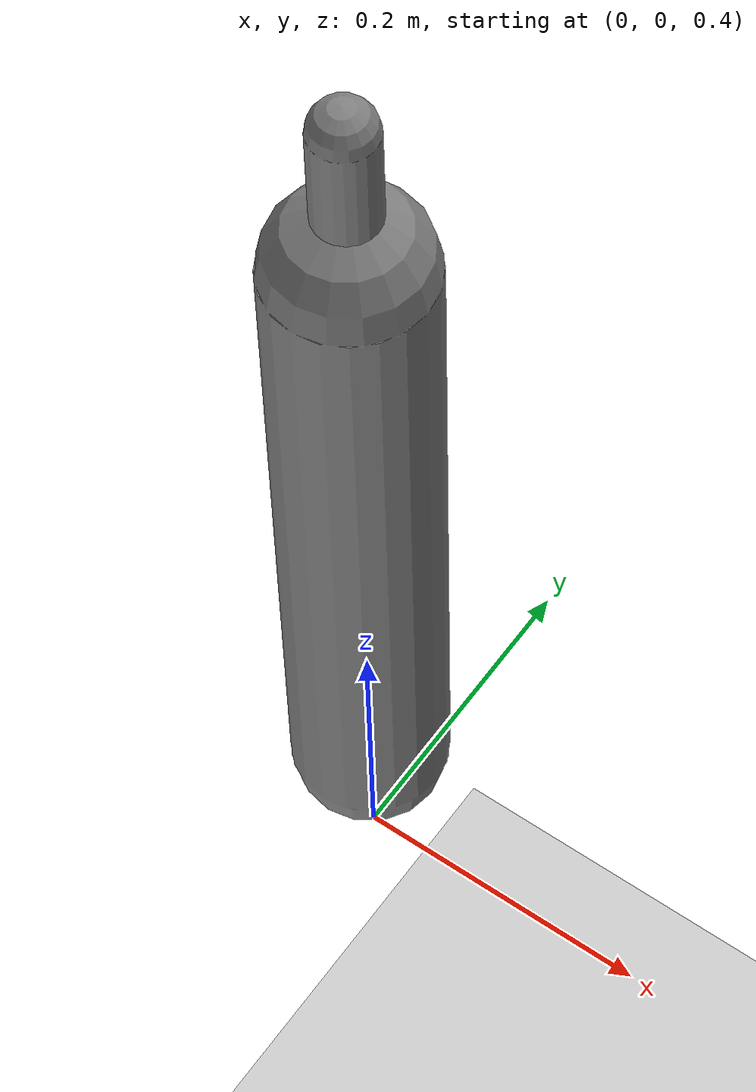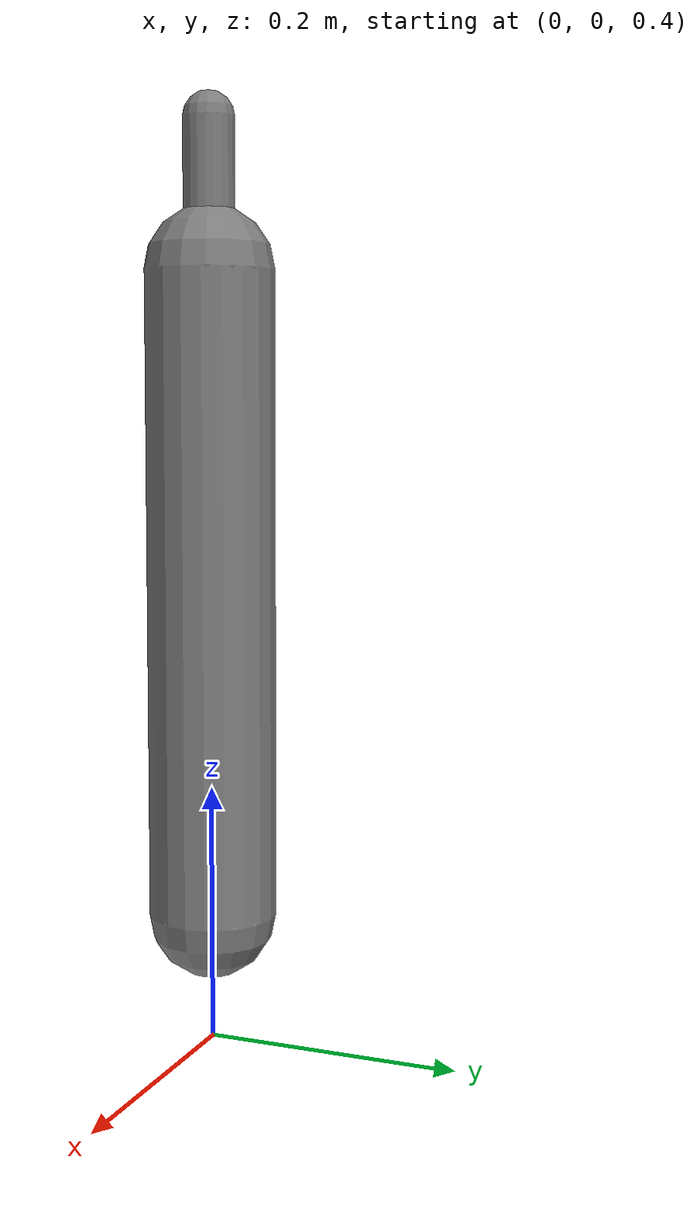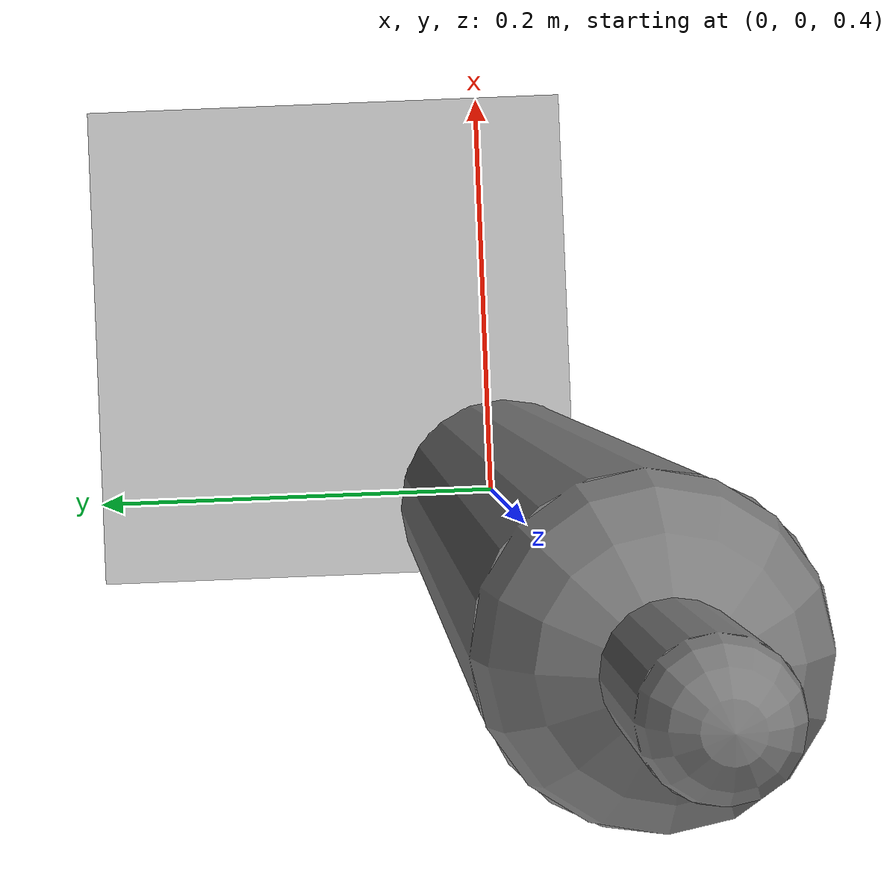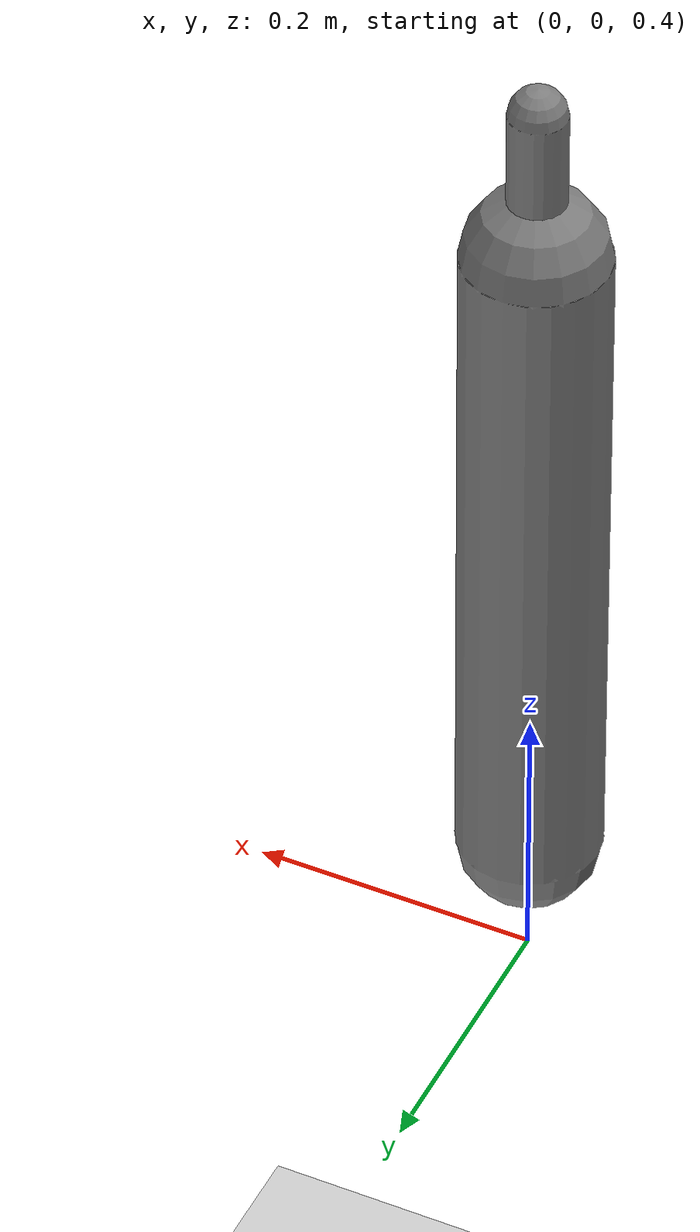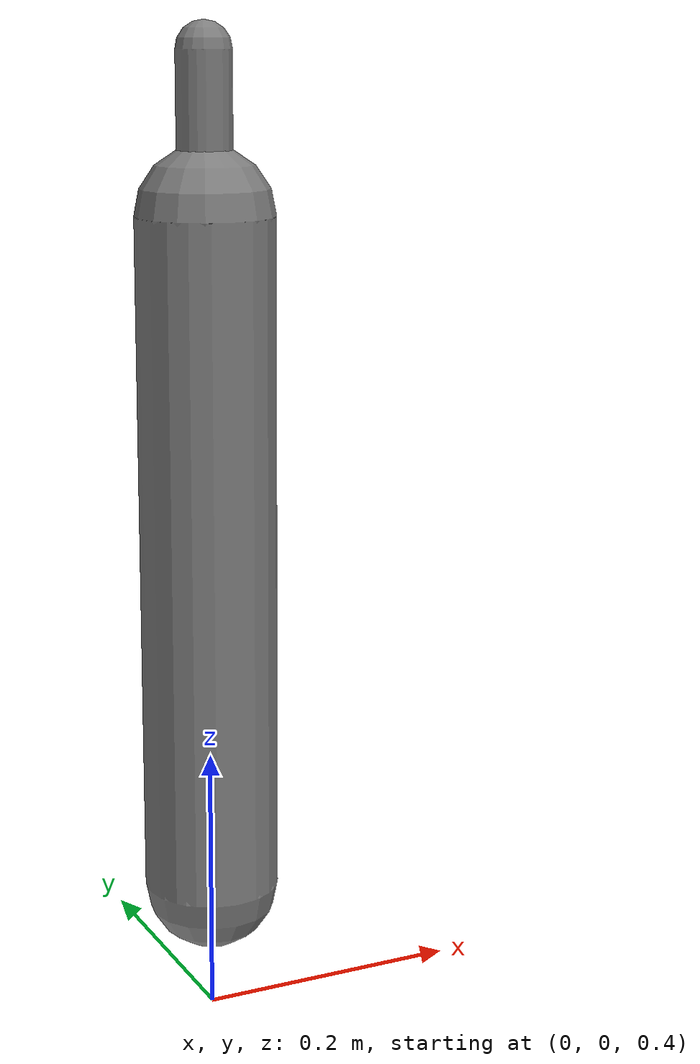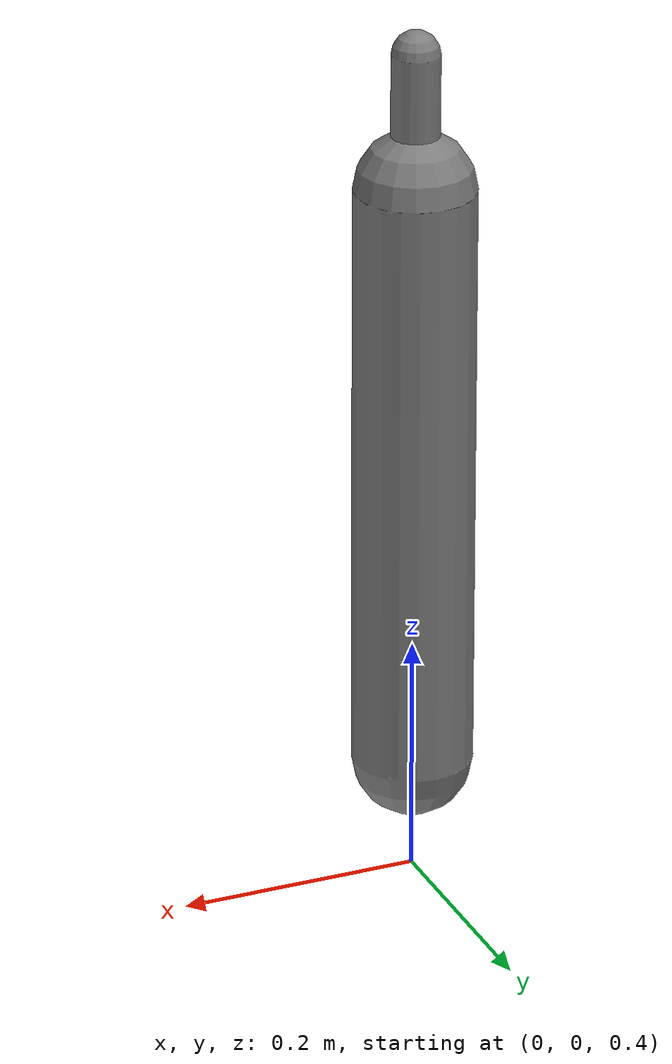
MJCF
<?xml version='1.0' encoding='UTF-8'?>
<mujoco model="RobotModel">
  <option gravity="0 0 -9.81" timestep="0.002" solver="CG" iterations="500" integrator="Euler"/>
  <worldbody>
    <geom name="Floor" type="plane" size="10 10 0.1" pos="0 0 0" rgba="0.8 0.8 0.8 1"/>
    <body name="Limb0" pos="0 0 0.5">
      <geom type="capsule" fromto="0 0 0 0 0 0.5" size="0.05" density="1000" contype="1" conaffinity="1"/>
      <body name="Limb0_835b9442" pos="0 0 0.5">
        <geom type="capsule" fromto="0 0 0 0 0 0.11366529032889593" size="0.019886262416321937" density="800" contype="1" conaffinity="1"/>
        <joint name="Joint_Limb0_Limb0_835b9442_0" type="hinge" axis="1 0 0" range="-60 60"/>
      </body>
    </body>
  </worldbody>
  <actuator>
    <position name="position_Actuator_Joint_Limb0_Limb0_835b9442_0" joint="Joint_Limb0_Limb0_835b9442_0" gear="1.0"/>
  </actuator>
</mujoco>
